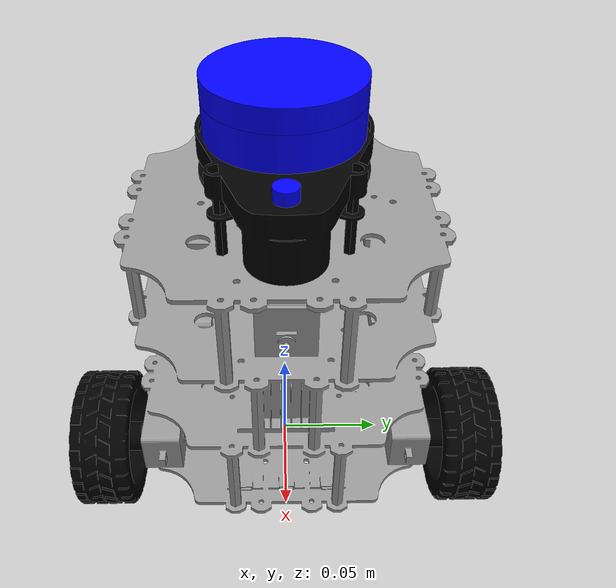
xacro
<?xml version="1.0"?>
<robot name="tortoisebot" xmlns:xacro="http://www.ros.org/wiki/xacro">
  <xacro:include filename="$(find tortoisebot_description)/urdf/materials.xacro"/>

  <xacro:include filename="$(find tortoisebot_description)/gazebo/tortoisebot_materials.gazebo"/>
  <xacro:include filename="$(find tortoisebot_description)/gazebo/tortoisebot_physics.gazebo"/>
  <xacro:include filename="$(find tortoisebot_description)/gazebo/tortoisebot_plugins.gazebo"/>

  <link name="base_link">
    <inertial>
      <origin rpy="0 0 0" xyz="-0.002760040106013823 -0.001188341092731165 0.0718803300182357"/>
      <mass value="0.5998126574179536"/>
      <inertia ixx="0.001977" ixy="-1.9e-05" ixz="1.6e-05" iyy="0.001845" iyz="3.1e-05" izz="0.001587"/>
    </inertial>
    <visual>
      <origin rpy="0 0 0" xyz="0 0 0"/>
      <geometry>
        <mesh filename="package://tortoisebot_description/meshes/base_link.stl" scale="0.001 0.001 0.001"/>
      </geometry>
      <material name="grey"/>
    </visual>
    <collision>
      <origin rpy="0 0 0" xyz="0 0 0"/>
      <geometry>
        <mesh filename="package://tortoisebot_description/meshes/base_link.stl" scale="0.001 0.001 0.001"/>
      </geometry>
    </collision>
  </link>

  <link name="wheel_right">
    <inertial>
      <origin rpy="0 0 0" xyz="-1.3588436534317516e-07 -0.01588997385974819 2.4327475205837557e-07"/>
      <mass value="0.23341302374485867"/>
      <inertia ixx="9.6e-05" ixy="-0.0" ixz="0.0" iyy="0.00016" iyz="0.0" izz="9.6e-05"/>
    </inertial>
    <visual>
      <origin rpy="0 0 0" xyz="-0.0325 0.07073 -0.03245"/>
      <geometry>
        <mesh filename="package://tortoisebot_description/meshes/wheel_right.stl" scale="0.001 0.001 0.001"/>
      </geometry>
      <material name="black"/>
    </visual>
    <collision>
      <origin rpy="0 0 0" xyz="-0.0325 0.07073 -0.03245"/>
      <geometry>
        <mesh filename="package://tortoisebot_description/meshes/wheel_right.stl" scale="0.001 0.001 0.001"/>
      </geometry>
    </collision>
  </link>

  <link name="wheel_left">
    <inertial>
      <origin rpy="0 0 0" xyz="-1.3200802984753013e-07 0.015889975585968247 2.563618809944823e-07"/>
      <mass value="0.2334125809795772"/>
      <inertia ixx="9.6e-05" ixy="0.0" ixz="0.0" iyy="0.00016" iyz="-0.0" izz="9.6e-05"/>
    </inertial>
    <visual>
      <origin rpy="0 0 0" xyz="-0.0325 -0.07073 -0.03245"/>
      <geometry>
        <mesh filename="package://tortoisebot_description/meshes/wheel_left.stl" scale="0.001 0.001 0.001"/>
      </geometry>
      <material name="black"/>
    </visual>
    <collision>
      <origin rpy="0 0 0" xyz="-0.0325 -0.07073 -0.03245"/>
      <geometry>
        <mesh filename="package://tortoisebot_description/meshes/wheel_left.stl" scale="0.001 0.001 0.001"/>
      </geometry>
    </collision>
  </link>

  <link name="caster">
    <inertial>
      <origin rpy="0 0 0" xyz="-0.01100000059604822 -1.4270326137978878e-17 -0.006845279720279717"/>
      <mass value="0.02931481955170001"/>
      <inertia ixx="2e-06" ixy="-0.0" ixz="0.0" iyy="2e-06" iyz="-0.0" izz="1e-06"/>
    </inertial>
    <visual>
      <origin rpy="0 0 0" xyz="0.032 -0.0 -0.01915"/>
      <geometry>
        <mesh filename="package://tortoisebot_description/meshes/caster.stl" scale="0.001 0.001 0.001"/>
      </geometry>
      <material name="black"/>
    </visual>
    <collision>
      <origin rpy="0 0 0" xyz="0.032 -0.0 -0.01915"/>
      <geometry>
        <mesh filename="package://tortoisebot_description/meshes/caster.stl" scale="0.001 0.001 0.001"/>
      </geometry>
    </collision>
  </link>

  <link name="lidar_body">
    <inertial>
      <origin rpy="0 0 0" xyz="0.04189252309401799 -0.030999999999999896 0.02544713291508699"/>
      <mass value="0.07136843474102665"/>
      <inertia ixx="2.3e-05" ixy="0.0" ixz="5e-06" iyy="6.1e-05" iyz="0.0" izz="7.7e-05"/>
    </inertial>
    <visual>
      <origin rpy="0 0 0" xyz="0.022 -0.031 -0.14715"/>
      <geometry>
        <mesh filename="package://tortoisebot_description/meshes/lidar_body.stl" scale="0.001 0.001 0.001"/>
      </geometry>
      <material name="black"/>
    </visual>
    <collision>
      <origin rpy="0 0 0" xyz="0.022 -0.031 -0.14715"/>
      <geometry>
        <mesh filename="package://tortoisebot_description/meshes/lidar_body.stl" scale="0.001 0.001 0.001"/>
      </geometry>
    </collision>
  </link>

  <link name="lidar_motorend">
    <inertial>
      <origin rpy="0 0 0" xyz="-1.3877787807814457e-17 7.710435591426653e-18 0.002750000000000058"/>
      <mass value="0.0005131791599638964"/>
      <inertia ixx="0.0" ixy="-0.0" ixz="0.0" iyy="0.0" iyz="0.0" izz="0.0"/>
    </inertial>
    <visual>
      <origin rpy="0 0 0" xyz="-0.05 -0.0 -0.18065"/>
      <geometry>
        <mesh filename="package://tortoisebot_description/meshes/lidar_motorend.stl" scale="0.001 0.001 0.001"/>
      </geometry>
      <material name="blue"/>
    </visual>
    <collision>
      <origin rpy="0 0 0" xyz="-0.05 -0.0 -0.18065"/>
      <geometry>
        <mesh filename="package://tortoisebot_description/meshes/lidar_motorend.stl" scale="0.001 0.001 0.001"/>
      </geometry>
    </collision>
  </link>

  <link name="lidar_bottom">
    <inertial>
      <origin rpy="0 0 0" xyz="-1.0850529511452296e-17 5.425264755726148e-18 0.007750000000000035"/>
      <mass value="0.062236577058626265"/>
      <inertia ixx="1.8e-05" ixy="-0.0" ixz="-0.0" iyy="1.8e-05" iyz="0.0" izz="3.3e-05"/>
    </inertial>
    <visual>
      <origin rpy="0 0 0" xyz="0.0 -0.0 -0.18065"/>
      <geometry>
        <mesh filename="package://tortoisebot_description/meshes/lidar_bottom.stl" scale="0.001 0.001 0.001"/>
      </geometry>
      <material name="blue"/>
    </visual>
    <collision>
      <origin rpy="0 0 0" xyz="0.0 -0.0 -0.18065"/>
      <geometry>
        <mesh filename="package://tortoisebot_description/meshes/lidar_bottom.stl" scale="0.001 0.001 0.001"/>
      </geometry>
    </collision>
  </link>

  <link name="lidar">
    <inertial>
      <origin rpy="0 0 0" xyz="-1.2613740557063325e-17 4.204580185687775e-18 0.00500000000000006"/>
      <mass value="0.040152630360403944"/>
      <inertia ixx="1.1e-05" ixy="0.0" ixz="0.0" iyy="1.1e-05" iyz="-0.0" izz="2.2e-05"/>
    </inertial>
    <visual>
      <origin rpy="0 0 0" xyz="0.0 -0.0 -0.19615"/>
      <geometry>
        <mesh filename="package://tortoisebot_description/meshes/lidar_top.stl" scale="0.001 0.001 0.001"/>
      </geometry>
      <material name="blue"/>
    </visual>
    <collision>
      <origin rpy="0 0 0" xyz="0.0 -0.0 -0.19615"/>
      <geometry>
        <mesh filename="package://tortoisebot_description/meshes/lidar_top.stl" scale="0.001 0.001 0.001"/>
      </geometry>
    </collision>
  </link>

  <link name="imu">
    <inertial>
      <origin rpy="0 0 0" xyz="-0.005006317892412869 0.010331821776814253 0.0005641458401822869"/>
      <mass value="0.0005786974233911084"/>
      <inertia ixx="0.0" ixy="0.0" ixz="-0.0" iyy="0.0" iyz="-0.0" izz="0.0"/>
    </inertial>
    <visual>
      <origin rpy="0 0 0" xyz="-0.04 0.01025 -0.10543"/>
      <geometry>
        <mesh filename="package://tortoisebot_description/meshes/imu.stl" scale="0.001 0.001 0.001"/>
      </geometry>
      <material name="grey"/>
    </visual>
    <collision>
      <origin rpy="0 0 0" xyz="-0.04 0.01025 -0.10543"/>
      <geometry>
        <mesh filename="package://tortoisebot_description/meshes/imu.stl" scale="0.001 0.001 0.001"/>
      </geometry>
    </collision>
  </link>

  <link name="camera">
    <inertial>
      <origin rpy="0 0 0" xyz="-0.000736316919000779 9.521361965188852e-15 0.01215919671545948"/>
      <mass value="0.011070080401829364"/>
      <inertia ixx="1e-06" ixy="-0.0" ixz="0.0" iyy="1e-06" iyz="0.0" izz="1e-06"/>
    </inertial>
    <visual>
      <origin rpy="0 0 0" xyz="-0.061 -0.0 -0.11515"/>
      <geometry>
        <mesh filename="package://tortoisebot_description/meshes/camera.stl" scale="0.001 0.001 0.001"/>
      </geometry>
      <material name="grey"/>
    </visual>
    <collision>
      <origin rpy="0 0 0" xyz="-0.061 -0.0 -0.11515"/>
      <geometry>
        <mesh filename="package://tortoisebot_description/meshes/camera.stl" scale="0.001 0.001 0.001"/>
      </geometry>
    </collision>
  </link>

  <joint name="motor_right" type="continuous">
    <origin rpy="0 0 0" xyz="0.0325 -0.07073 0.03245"/>
    <parent link="base_link"/>
    <child link="wheel_right"/>
    <axis xyz="0 1 0"/>
  </joint>

  <joint name="motor_left" type="continuous">
    <origin rpy="0 0 0" xyz="0.0325 0.07073 0.03245"/>
    <parent link="base_link"/>
    <child link="wheel_left"/>
    <axis xyz="0 1 0"/>
  </joint>

  <joint name="Rigid3" type="fixed">
    <origin rpy="0 0 0" xyz="-0.032 0.0 0.01915"/>
    <parent link="base_link"/>
    <child link="caster"/>
  </joint>

  <joint name="Rigid4" type="fixed">
    <origin rpy="0 0 0" xyz="-0.022 0.031 0.14715"/>
    <parent link="base_link"/>
    <child link="lidar_body"/>
  </joint>

  <joint name="Rigid5" type="fixed">
    <origin rpy="0 0 0" xyz="0.072 -0.031 0.0335"/>
    <parent link="lidar_body"/>
    <child link="lidar_motorend"/>
  </joint>

  <joint name="Rigid6" type="fixed">
    <origin rpy="0 0 0" xyz="0.022 -0.031 0.0335"/>
    <parent link="lidar_body"/>
    <child link="lidar_bottom"/>
  </joint>

  <joint name="Rigid7" type="fixed">
    <origin rpy="0 0 0" xyz="0.0 0.0 0.0155"/>
    <parent link="lidar_bottom"/>
    <child link="lidar"/>
  </joint>

  <joint name="Rigid8" type="fixed">
    <origin rpy="0 0 0" xyz="0.04 -0.01025 0.10543"/>
    <parent link="base_link"/>
    <child link="imu"/>
  </joint>

  <joint name="Rigid9" type="fixed">
    <origin rpy="0 0 0" xyz="0.061 0.0 0.11515"/>
    <parent link="base_link"/>
    <child link="camera"/>
  </joint>
</robot>

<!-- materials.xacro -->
<robot name="tortoisebot" xmlns:xacro="http://www.ros.org/wiki/xacro" >

<material name="silver">
  <color rgba="0.300 0.300 0.300 1.000"/>
</material>

<material name="black">
  <color rgba="0.000 0.000 0.000 1.000"/>
</material>

<material name="blue">
  <color rgba="0.000 0.000 1.000 1.000"/>
</material>

</robot>

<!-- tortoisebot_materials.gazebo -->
<robot name="tortoisebot" xmlns:xacro="http://www.ros.org/wiki/xacro" >

<xacro:property name="body_color" value="Gazebo/DarkGrey" />
<xacro:property name="wheel_color" value="Gazebo/Black" />
<xacro:property name="lidar_base_color" value="Gazebo/Black" />
<xacro:property name="lidar_top_color" value="Gazebo/Blue" />
<xacro:property name="caster_color" value="Gazebo/Grey" />

<gazebo reference="base_link">
  <material>${body_color}</material>
</gazebo>

<gazebo reference="wheel_right">
  <material>${wheel_color}</material>
</gazebo>

<gazebo reference="wheel_left">
  <material>${wheel_color}</material>
</gazebo>

<gazebo reference="caster">
  <material>${caster_color}</material>
</gazebo>

<gazebo reference="lidar_body">
  <material>${lidar_base_color}</material>
</gazebo>

<gazebo reference="lidar_motorend">
  <material>${lidar_top_color}</material>
</gazebo>

<gazebo reference="lidar_bottom">
  <material>${lidar_top_color}</material>
</gazebo>

<gazebo reference="lidar_top">
  <material>${lidar_top_color}</material>
</gazebo>

<gazebo reference="imu">
  <material>${body_color}</material>
</gazebo>

<gazebo reference="camera">
  <material>${body_color}</material>
</gazebo>

</robot>
